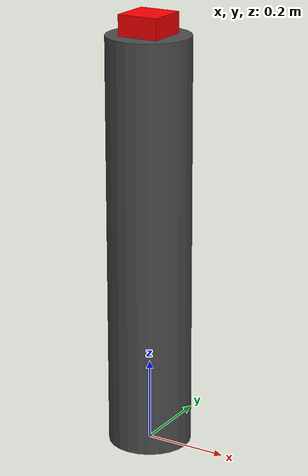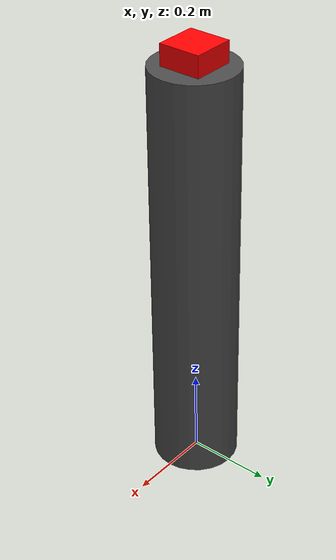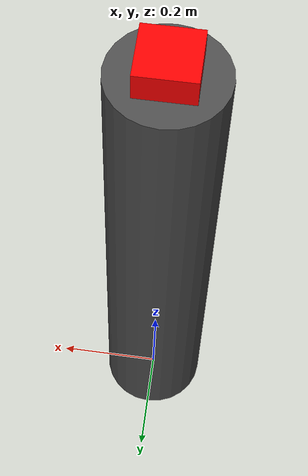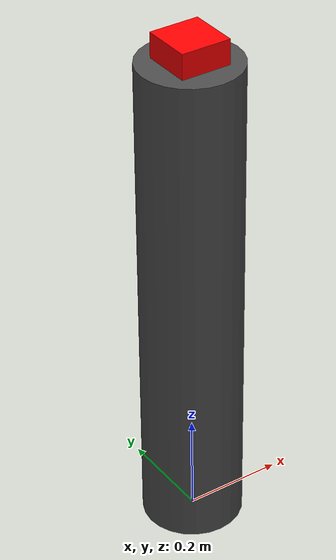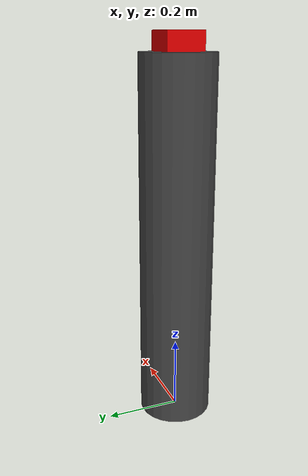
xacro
<?xml version="1.0"?>
<robot name="grip" xmlns:xacro="http://www.ros.org/wiki/xacro">
    <link name="world"/>

    <joint name="fixed" type="fixed">
        <parent link="world"/>
        <child link="poll"/>
    </joint>

    <link name="poll">
        <visual>
            <geometry>
                <cylinder length="1" radius="0.1"/>
            </geometry>
            <origin rpy="0 0 1.570796" xyz="0 0 0.5"/>
        </visual>
        <collision>
            <geometry>
                <cylinder length="1" radius="0.1"/>
            </geometry>
            <origin rpy="0 0 1.570796" xyz="0 0 0.5"/>
        </collision>
        <inertial>
            <mass value="1.0"/>
            <inertia ixx="1.0" ixy="0.0" ixz="0.0" iyy="1.0" iyz="0.0" izz="1.0"/>
        </inertial>
    </link>

    <joint name="box_to_poll" type="prismatic">
        <parent link="poll"/>
        <child link="box"/>
        <origin xyz="0.0 0.0 1.0"/>
        <axis xyz="0 0 1" />
        <limit effort="1000.0" lower="0" upper="2" velocity="30"/>
        <dynamics damping="0" friction="0"/>
    </joint>

    <link name="box">
        <visual>
            <geometry>
                <box size="0.1 0.1 0.1"/>
            </geometry>
            <origin rpy="0 0 0" xyz="0 0 0"/>
            <material name="red">
                <color rgba="1 0 0 1"/>
            </material>
        </visual>
        <collision>
            <geometry>
              <box size="0.1 0.1 0.1"/>
            </geometry>
            <origin rpy="0 0 0" xyz="0 0 0"/>
        </collision>
        <inertial>
            <mass value="1.0"/>
            <inertia ixx="1.0" ixy="0.0" ixz="0.0" iyy="1.0" iyz="0.0" izz="1.0"/>
        </inertial>
    </link>

  <ros2_control name="GazeboSystem" type="system">
    <hardware>
      <plugin>gazebo_ros2_control/GazeboSystem</plugin>
    </hardware>
    <joint name="box_to_poll">
      <command_interface name="effort">
        <param name="min">-1000</param>
        <param name="max">1000</param>
      </command_interface>
      <state_interface name="position">
        <param name="initial_value">1.0</param>
      </state_interface>
      <state_interface name="velocity"/>
      <state_interface name="effort"/>
    </joint>
  </ros2_control>

  <gazebo>
    <plugin filename="libgazebo_ros2_control.so" name="gazebo_ros2_control">
      <parameters>$(find wearable_robot_description)/config/grip.yaml</parameters>
    </plugin>
  </gazebo>

  <gazebo reference="poll">
    <mu1>1.01</mu1>
    <mu2>1.01</mu2>
    <self_collide>1</self_collide>
    <material>Gazebo/DarkGrey</material>
    <kp value="1000000.0"/>
    <kd value="1.0"/>
  </gazebo>

  <gazebo reference="box">
    <mu1>0.2</mu1>
    <mu2>0.2</mu2>
    <self_collide>1</self_collide>
    <material>Gazebo/Red</material>
    <kp value="1000000.0"/>
    <kd value="1.0"/>
  </gazebo>

</robot>
